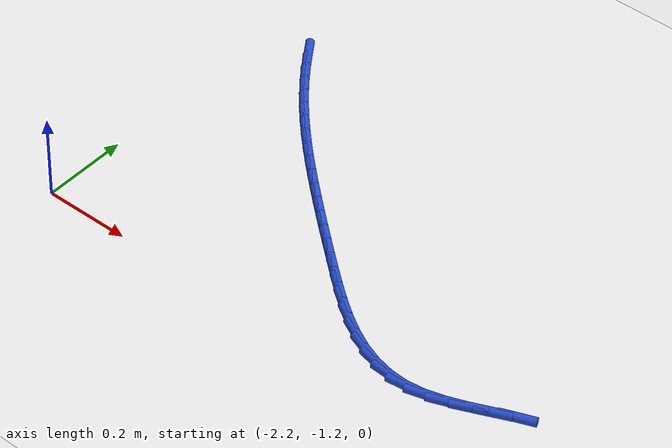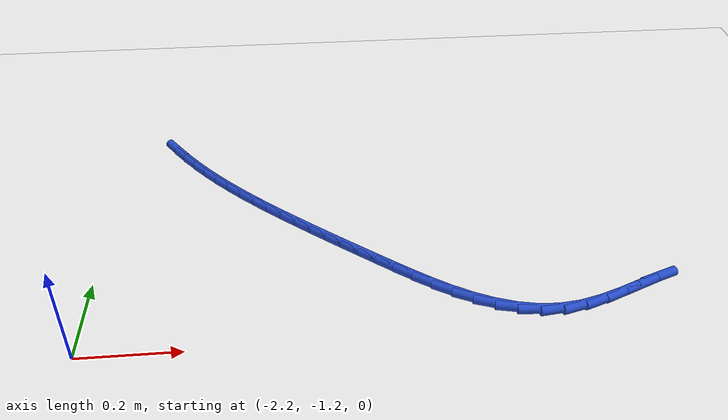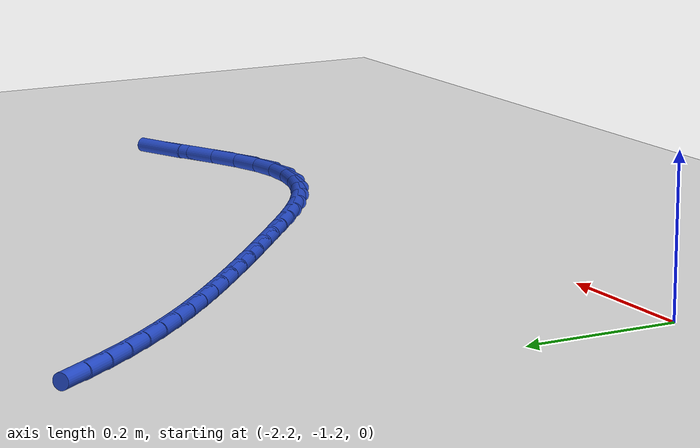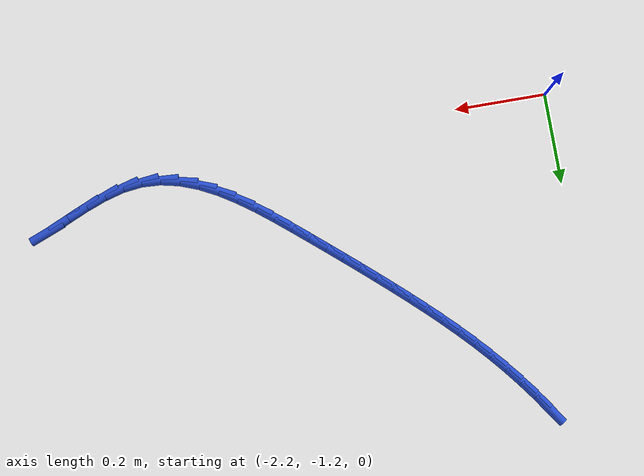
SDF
<sdf version="1.6">
 <world name="default">
  <model name="ground_plane">
   <static>1</static>
   <link name="link">
    <collision name="collision">
     <geometry><plane><normal>0 0 1</normal><size>100 100</size></plane></geometry>
     <surface><friction><ode><mu>100</mu><mu2>50</mu2></ode></friction></surface>
    </collision>
    <visual name="visual">
     <cast_shadows>0</cast_shadows>
     <geometry><plane><normal>0 0 1</normal><size>100 100</size></plane></geometry>
     <material>
      <script><uri>file://media/materials/scripts/gazebo.material</uri><name>Gazebo/WhiteGlow</name></script>
     </material>
    </visual>
   </link>
  </model>
  <model name="line">
   <link name="link_106">
    <pose>-2.080801360351455 -0.5249043828212892 0.01 0 1.57 -0.9694616101981712</pose>
    <collision name="collision">
     <geometry><cylinder><radius>0.01</radius><length>0.08</length></cylinder></geometry>
    </collision>
    <visual name="visual">
     <material>
      <script><name>Gazebo/Blue</name><uri>file://media/materials/scripts/gazebo.material</uri></script>
     </material>
     <geometry><cylinder><radius>0.01</radius><length>0.08</length></cylinder></geometry>
    </visual>
   </link>
   <link name="link_107">
    <pose>-2.056759331031463 -0.5599460657170137 0.01 0 1.57 -0.9329062997671627</pose>
    <collision name="collision">
     <geometry><cylinder><radius>0.01</radius><length>0.08</length></cylinder></geometry>
    </collision>
    <visual name="visual">
     <material>
      <script><name>Gazebo/Blue</name><uri>file://media/materials/scripts/gazebo.material</uri></script>
     </material>
     <geometry><cylinder><radius>0.01</radius><length>0.08</length></cylinder></geometry>
    </visual>
   </link>
   <link name="link_108">
    <pose>-2.0314253560595397 -0.5941225435419237 0.01 0 1.57 -0.8980896698591204</pose>
    <collision name="collision">
     <geometry><cylinder><radius>0.01</radius><length>0.08</length></cylinder></geometry>
    </collision>
    <visual name="visual">
     <material>
      <script><name>Gazebo/Blue</name><uri>file://media/materials/scripts/gazebo.material</uri></script>
     </material>
     <geometry><cylinder><radius>0.01</radius><length>0.08</length></cylinder></geometry>
    </visual>
   </link>
   <link name="link_109">
    <pose>-2.004897757539897 -0.6274206789698714 0.01 0 1.57 -0.8649235315200737</pose>
    <collision name="collision">
     <geometry><cylinder><radius>0.01</radius><length>0.08</length></cylinder></geometry>
    </collision>
    <visual name="visual">
     <material>
      <script><name>Gazebo/Blue</name><uri>file://media/materials/scripts/gazebo.material</uri></script>
     </material>
     <geometry><cylinder><radius>0.01</radius><length>0.08</length></cylinder></geometry>
    </visual>
   </link>
   <link name="link_110">
    <pose>-1.9772749363860618 -0.6598274661313575 0.01 0 1.57 -0.8339544103513851</pose>
    <collision name="collision">
     <geometry><cylinder><radius>0.01</radius><length>0.08</length></cylinder></geometry>
    </collision>
    <visual name="visual">
     <material>
      <script><name>Gazebo/Blue</name><uri>file://media/materials/scripts/gazebo.material</uri></script>
     </material>
     <geometry><cylinder><radius>0.01</radius><length>0.08</length></cylinder></geometry>
    </visual>
   </link>
   <link name="link_111">
    <pose>-1.9486700184639465 -0.6913544608852884 0.01 0 1.57 -0.8065084728981706</pose>
    <collision name="collision">
     <geometry><cylinder><radius>0.01</radius><length>0.08</length></cylinder></geometry>
    </collision>
    <visual name="visual">
     <material>
      <script><name>Gazebo/Blue</name><uri>file://media/materials/scripts/gazebo.material</uri></script>
     </material>
     <geometry><cylinder><radius>0.01</radius><length>0.08</length></cylinder></geometry>
    </visual>
   </link>
   <link name="link_112">
    <pose>-1.9192280588966635 -0.722066478192733 0.01 0 1.57 -0.7827202804087489</pose>
    <collision name="collision">
     <geometry><cylinder><radius>0.01</radius><length>0.08</length></cylinder></geometry>
    </collision>
    <visual name="visual">
     <material>
      <script><name>Gazebo/Blue</name><uri>file://media/materials/scripts/gazebo.material</uri></script>
     </material>
     <geometry><cylinder><radius>0.01</radius><length>0.08</length></cylinder></geometry>
    </visual>
   </link>
   <link name="link_113">
    <pose>-1.8890982933683471 -0.7520353063347176 0.01 0 1.57 -0.7625406240649846</pose>
    <collision name="collision">
     <geometry><cylinder><radius>0.01</radius><length>0.08</length></cylinder></geometry>
    </collision>
    <visual name="visual">
     <material>
      <script><name>Gazebo/Blue</name><uri>file://media/materials/scripts/gazebo.material</uri></script>
     </material>
     <geometry><cylinder><radius>0.01</radius><length>0.08</length></cylinder></geometry>
    </visual>
   </link>
   <link name="link_114">
    <pose>-1.8584299575631316 -0.7813327335922686 0.01 0 1.57 -0.7459268065479296</pose>
    <collision name="collision">
     <geometry><cylinder><radius>0.01</radius><length>0.08</length></cylinder></geometry>
    </collision>
    <visual name="visual">
     <material>
      <script><name>Gazebo/Blue</name><uri>file://media/materials/scripts/gazebo.material</uri></script>
     </material>
     <geometry><cylinder><radius>0.01</radius><length>0.08</length></cylinder></geometry>
    </visual>
   </link>
   <link name="link_115">
    <pose>-1.8273722871651485 -0.8100305482464129 0.01 0 1.57 -0.7328503697297316</pose>
    <collision name="collision">
     <geometry><cylinder><radius>0.01</radius><length>0.08</length></cylinder></geometry>
    </collision>
    <visual name="visual">
     <material>
      <script><name>Gazebo/Blue</name><uri>file://media/materials/scripts/gazebo.material</uri></script>
     </material>
     <geometry><cylinder><radius>0.01</radius><length>0.08</length></cylinder></geometry>
    </visual>
   </link>
   <link name="link_116">
    <pose>-1.796074517858534 -0.8382005385781754 0.01 0 1.57 -0.7232952808476876</pose>
    <collision name="collision">
     <geometry><cylinder><radius>0.01</radius><length>0.08</length></cylinder></geometry>
    </collision>
    <visual name="visual">
     <material>
      <script><name>Gazebo/Blue</name><uri>file://media/materials/scripts/gazebo.material</uri></script>
     </material>
     <geometry><cylinder><radius>0.01</radius><length>0.08</length></cylinder></geometry>
    </visual>
   </link>
   <link name="link_117">
    <pose>-1.764684957229813 -0.8659148521739937 0.01 0 1.57 -0.7162997711314113</pose>
    <collision name="collision">
     <geometry><cylinder><radius>0.01</radius><length>0.08</length></cylinder></geometry>
    </collision>
    <visual name="visual">
     <material>
      <script><name>Gazebo/Blue</name><uri>file://media/materials/scripts/gazebo.material</uri></script>
     </material>
     <geometry><cylinder><radius>0.01</radius><length>0.08</length></cylinder></geometry>
    </visual>
   </link>
   <link name="link_118">
    <pose>-1.733240121455658 -0.8932889157517998 0.01 0 1.57 -0.7100534611950506</pose>
    <collision name="collision">
     <geometry><cylinder><radius>0.01</radius><length>0.08</length></cylinder></geometry>
    </collision>
    <visual name="visual">
     <material>
      <script><name>Gazebo/Blue</name><uri>file://media/materials/scripts/gazebo.material</uri></script>
     </material>
     <geometry><cylinder><radius>0.01</radius><length>0.08</length></cylinder></geometry>
    </visual>
   </link>
   <link name="link_119">
    <pose>-1.701559684072877 -0.9205221048869294 0.01 0 1.57 -0.7044627175290641</pose>
    <collision name="collision">
     <geometry><cylinder><radius>0.01</radius><length>0.08</length></cylinder></geometry>
    </collision>
    <visual name="visual">
     <material>
      <script><name>Gazebo/Blue</name><uri>file://media/materials/scripts/gazebo.material</uri></script>
     </material>
     <geometry><cylinder><radius>0.01</radius><length>0.08</length></cylinder></geometry>
    </visual>
   </link>
   <link name="link_120">
    <pose>-1.6694384428285813 -0.9478234256135757 0.01 0 1.57 -0.6996247364421413</pose>
    <collision name="collision">
     <geometry><cylinder><radius>0.01</radius><length>0.08</length></cylinder></geometry>
    </collision>
    <visual name="visual">
     <material>
      <script><name>Gazebo/Blue</name><uri>file://media/materials/scripts/gazebo.material</uri></script>
     </material>
     <geometry><cylinder><radius>0.01</radius><length>0.08</length></cylinder></geometry>
    </visual>
   </link>
   <link name="link_121">
    <pose>-1.6366711954698863 -0.9754018839659302 0.01 0 1.57 -0.6955488861557453</pose>
    <collision name="collision">
     <geometry><cylinder><radius>0.01</radius><length>0.08</length></cylinder></geometry>
    </collision>
    <visual name="visual">
     <material>
      <script><name>Gazebo/Blue</name><uri>file://media/materials/scripts/gazebo.material</uri></script>
     </material>
     <geometry><cylinder><radius>0.01</radius><length>0.08</length></cylinder></geometry>
    </visual>
   </link>
   <link name="link_122">
    <pose>-1.6030532958205843 -1.0034630068761377 0.01 0 1.57 -0.6863851820986623</pose>
    <collision name="collision">
     <geometry><cylinder><radius>0.01</radius><length>0.08</length></cylinder></geometry>
    </collision>
    <visual name="visual">
     <material>
      <script><name>Gazebo/Blue</name><uri>file://media/materials/scripts/gazebo.material</uri></script>
     </material>
     <geometry><cylinder><radius>0.01</radius><length>0.08</length></cylinder></geometry>
    </visual>
   </link>
   <link name="link_123">
    <pose>-1.5684430636369149 -1.03181837398007 0.01 0 1.57 -0.6610866543789021</pose>
    <collision name="collision">
     <geometry><cylinder><radius>0.01</radius><length>0.08</length></cylinder></geometry>
    </collision>
    <visual name="visual">
     <material>
      <script><name>Gazebo/Blue</name><uri>file://media/materials/scripts/gazebo.material</uri></script>
     </material>
     <geometry><cylinder><radius>0.01</radius><length>0.08</length></cylinder></geometry>
    </visual>
   </link>
   <link name="link_124">
    <pose>-1.5328188509282312 -1.0595285813302018 0.01 0 1.57 -0.6178118597058514</pose>
    <collision name="collision">
     <geometry><cylinder><radius>0.01</radius><length>0.08</length></cylinder></geometry>
    </collision>
    <visual name="visual">
     <material>
      <script><name>Gazebo/Blue</name><uri>file://media/materials/scripts/gazebo.material</uri></script>
     </material>
     <geometry><cylinder><radius>0.01</radius><length>0.08</length></cylinder></geometry>
    </visual>
   </link>
   <link name="link_125">
    <pose>-1.496172490792295 -1.0855698803481535 0.01 0 1.57 -0.5547868017543551</pose>
    <collision name="collision">
     <geometry><cylinder><radius>0.01</radius><length>0.08</length></cylinder></geometry>
    </collision>
    <visual name="visual">
     <material>
      <script><name>Gazebo/Blue</name><uri>file://media/materials/scripts/gazebo.material</uri></script>
     </material>
     <geometry><cylinder><radius>0.01</radius><length>0.08</length></cylinder></geometry>
    </visual>
   </link>
   <link name="link_126">
    <pose>-1.4584958163268669 -1.108918522455546 0.01 0 1.57 -0.46930696666662064</pose>
    <collision name="collision">
     <geometry><cylinder><radius>0.01</radius><length>0.08</length></cylinder></geometry>
    </collision>
    <visual name="visual">
     <material>
      <script><name>Gazebo/Blue</name><uri>file://media/materials/scripts/gazebo.material</uri></script>
     </material>
     <geometry><cylinder><radius>0.01</radius><length>0.08</length></cylinder></geometry>
    </visual>
   </link>
   <link name="link_127">
    <pose>-1.4197806606297083 -1.1285507590739985 0.01 0 1.57 -0.3583606286523444</pose>
    <collision name="collision">
     <geometry><cylinder><radius>0.01</radius><length>0.08</length></cylinder></geometry>
    </collision>
    <visual name="visual">
     <material>
      <script><name>Gazebo/Blue</name><uri>file://media/materials/scripts/gazebo.material</uri></script>
     </material>
     <geometry><cylinder><radius>0.01</radius><length>0.08</length></cylinder></geometry>
    </visual>
   </link>
   <link name="link_128">
    <pose>-1.3800188567985803 -1.1434428416251323 0.01 0 1.57 -0.22001846116498314</pose>
    <collision name="collision">
     <geometry><cylinder><radius>0.01</radius><length>0.08</length></cylinder></geometry>
    </collision>
    <visual name="visual">
     <material>
      <script><name>Gazebo/Blue</name><uri>file://media/materials/scripts/gazebo.material</uri></script>
     </material>
     <geometry><cylinder><radius>0.01</radius><length>0.08</length></cylinder></geometry>
    </visual>
   </link>
   <link name="link_129">
    <pose>-1.3392022379312432 -1.1525710215305671 0.01 0 1.57 -0.05582900545680265</pose>
    <collision name="collision">
     <geometry><cylinder><radius>0.01</radius><length>0.08</length></cylinder></geometry>
    </collision>
    <visual name="visual">
     <material>
      <script><name>Gazebo/Blue</name><uri>file://media/materials/scripts/gazebo.material</uri></script>
     </material>
     <geometry><cylinder><radius>0.01</radius><length>0.08</length></cylinder></geometry>
    </visual>
   </link>
   <link name="link_130">
    <pose>-1.2973226371254583 -1.154911550211924 0.01 0 1.57 0.12520307484080176</pose>
    <collision name="collision">
     <geometry><cylinder><radius>0.01</radius><length>0.08</length></cylinder></geometry>
    </collision>
    <visual name="visual">
     <material>
      <script><name>Gazebo/Blue</name><uri>file://media/materials/scripts/gazebo.material</uri></script>
     </material>
     <geometry><cylinder><radius>0.01</radius><length>0.08</length></cylinder></geometry>
    </visual>
   </link>
   <link name="link_131">
    <pose>-1.2543815883037084 -1.1495069286989006 0.01 0 1.57 0.2778354081878173</pose>
    <collision name="collision">
     <geometry><cylinder><radius>0.01</radius><length>0.08</length></cylinder></geometry>
    </collision>
    <visual name="visual">
     <material>
      <script><name>Gazebo/Blue</name><uri>file://media/materials/scripts/gazebo.material</uri></script>
     </material>
     <geometry><cylinder><radius>0.01</radius><length>0.08</length></cylinder></geometry>
    </visual>
   </link>
   <link name="link_132">
    <pose>-1.210618651662949 -1.137025205110901 0.01 0 1.57 0.37201553811246635</pose>
    <collision name="collision">
     <geometry><cylinder><radius>0.01</radius><length>0.08</length></cylinder></geometry>
    </collision>
    <visual name="visual">
     <material>
      <script><name>Gazebo/Blue</name><uri>file://media/materials/scripts/gazebo.material</uri></script>
     </material>
     <geometry><cylinder><radius>0.01</radius><length>0.08</length></cylinder></geometry>
    </visual>
   </link>
   <link name="link_133">
    <pose>-1.1665200024329843 -1.1198186296572918 0.01 0 1.57 0.4177251225859219</pose>
    <collision name="collision">
     <geometry><cylinder><radius>0.01</radius><length>0.08</length></cylinder></geometry>
    </collision>
    <visual name="visual">
     <material>
      <script><name>Gazebo/Blue</name><uri>file://media/materials/scripts/gazebo.material</uri></script>
     </material>
     <geometry><cylinder><radius>0.01</radius><length>0.08</length></cylinder></geometry>
    </visual>
   </link>
   <link name="link_134">
    <pose>-1.1225832350966634 -1.1003174377765659 0.01 0 1.57 0.4207534428916411</pose>
    <collision name="collision">
     <geometry><cylinder><radius>0.01</radius><length>0.08</length></cylinder></geometry>
    </collision>
    <visual name="visual">
     <material>
      <script><name>Gazebo/Blue</name><uri>file://media/materials/scripts/gazebo.material</uri></script>
     </material>
     <geometry><cylinder><radius>0.01</radius><length>0.08</length></cylinder></geometry>
    </visual>
   </link>
   <link name="link_135">
    <pose>-1.0793059441368356 -1.0809518649072147 0.01 0 1.57 0.3795160106409648</pose>
    <collision name="collision">
     <geometry><cylinder><radius>0.01</radius><length>0.08</length></cylinder></geometry>
    </collision>
    <visual name="visual">
     <material>
      <script><name>Gazebo/Blue</name><uri>file://media/materials/scripts/gazebo.material</uri></script>
     </material>
     <geometry><cylinder><radius>0.01</radius><length>0.08</length></cylinder></geometry>
    </visual>
   </link>
  </model>
 </world>
</sdf>
